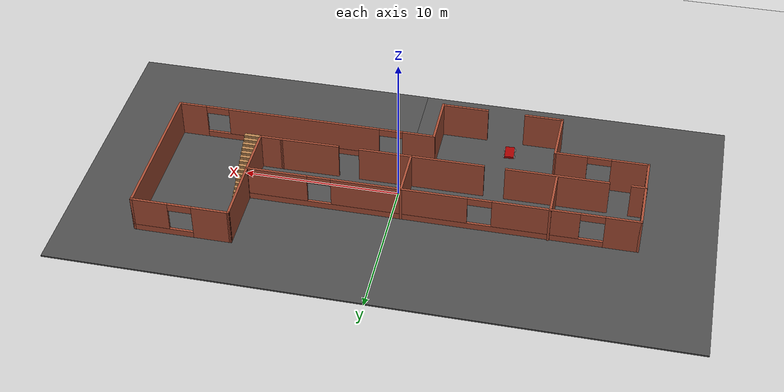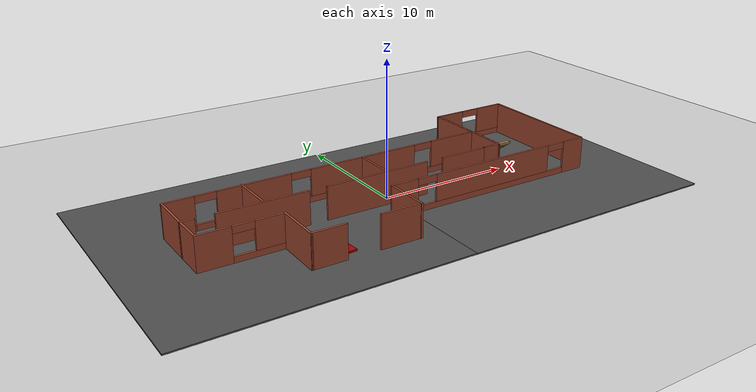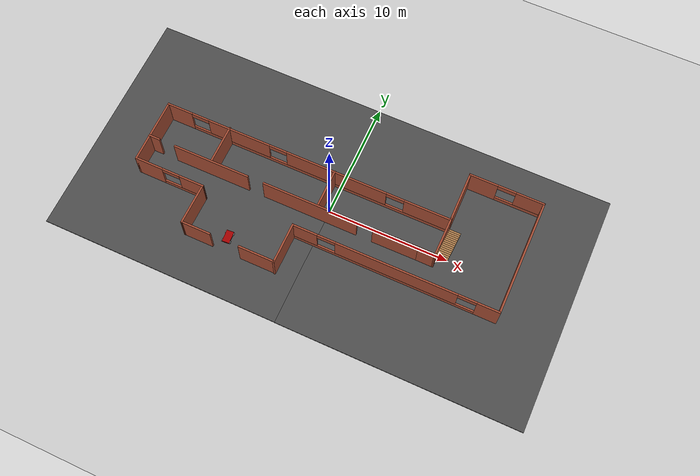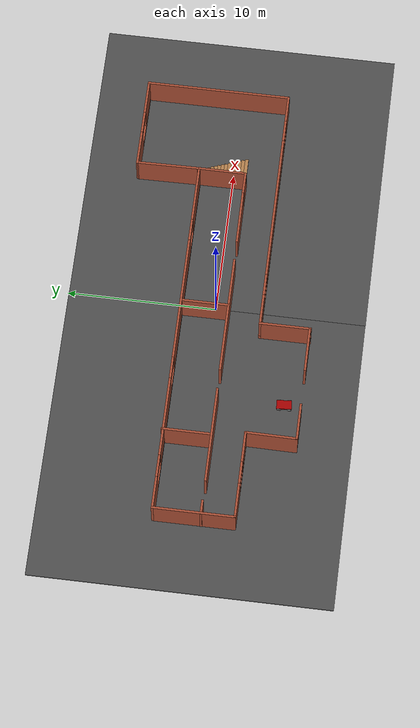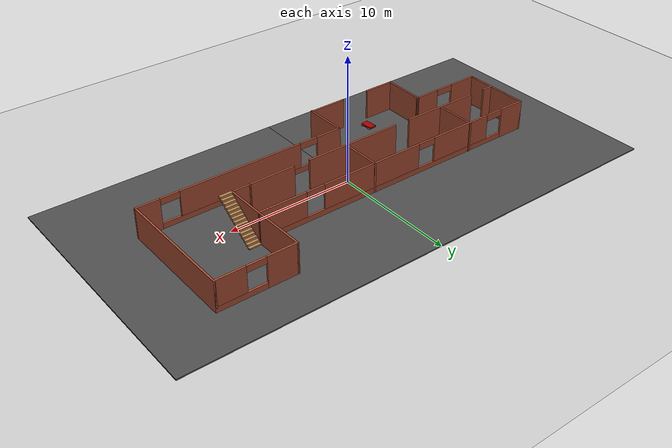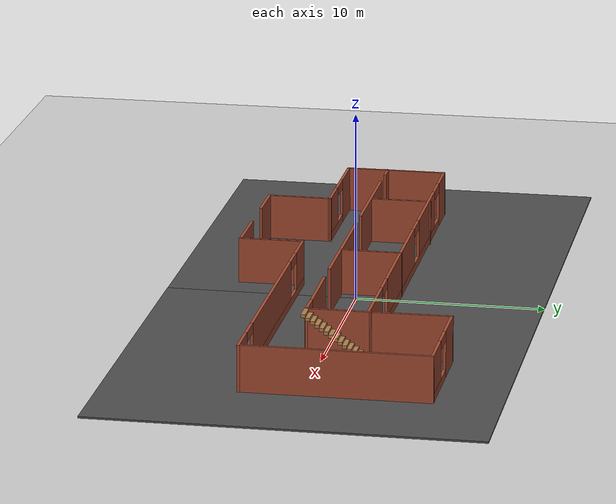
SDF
<sdf version="1.7">
 <world name="default">
  <light name="sun" type="directional">
   <pose>0 0 10 0 -0 0</pose>
   <diffuse>0.8 0.8 0.8 1</diffuse>
   <specular>0.2 0.2 0.2 1</specular>
   <attenuation>
    <range>1000</range>
    <constant>0.9</constant>
    <linear>0.01</linear>
    <quadratic>0.001</quadratic>
   </attenuation>
   <direction>-0.5 0.1 -0.9</direction>
   <spot><inner_angle>0</inner_angle><outer_angle>0</outer_angle><falloff>0</falloff></spot>
  </light>
  <model name="ground_plane">
   <static>1</static>
   <link name="link">
    <collision name="collision">
     <geometry><plane><normal>0 0 1</normal><size>100 100</size></plane></geometry>
     <surface><friction><ode><mu>100</mu><mu2>50</mu2></ode></friction></surface>
    </collision>
    <visual name="visual">
     <cast_shadows>0</cast_shadows>
     <geometry><plane><normal>0 0 1</normal><size>100 100</size></plane></geometry>
     <material>
      <script><uri>file://media/materials/scripts/gazebo.material</uri><name>Gazebo/Grey</name></script>
     </material>
    </visual>
   </link>
  </model>
  <gravity>0 0 -9.8</gravity>
  <magnetic_field>6e-06 2.3e-05 -4.2e-05</magnetic_field>
  <atmosphere type="adiabatic"/>
  <physics type="ode">
   <max_step_size>0.001</max_step_size>
   <real_time_factor>1</real_time_factor>
   <real_time_update_rate>1000</real_time_update_rate>
  </physics>
  <scene><ambient>0.4 0.4 0.4 1</ambient><background>0.7 0.7 0.7 1</background><shadows>1</shadows></scene>
  <spherical_coordinates>
   <surface_model>EARTH_WGS84</surface_model>
   <latitude_deg>0</latitude_deg>
   <longitude_deg>0</longitude_deg>
   <elevation>0</elevation>
   <heading_deg>0</heading_deg>
  </spherical_coordinates>
  <model name="hospital">
   <pose>-0.045457 -0.009222 -0.021008 0 -0 0</pose>
   <frame name="Stairs::__model__" attached_to="Stairs::Stairs_0">
    <pose relative_to="__model__">0 0 0 0 -0 0</pose>
   </frame>
   <link name="Stairs::Stairs_0">
    <visual name="Stairs_0_Visual_0">
     <pose>9.72126 2.40649 0.083333 0 -0 0</pose>
     <geometry><box><size>1 0.233333 0.166667</size></box></geometry>
     <material>
      <script><uri>file://media/materials/scripts/gazebo.material</uri><name>Gazebo/Wood</name></script>
      <ambient>1 1 1 1</ambient>
     </material>
     <meta><layer>0</layer></meta>
    </visual>
    <collision name="Stairs_0_Collision_0">
     <geometry><box><size>1 0.233333 0.166667</size></box></geometry>
     <pose>9.72126 2.40649 0.083333 0 -0 0</pose>
    </collision>
    <visual name="Stairs_0_Visual_1">
     <pose>9.72126 2.17315 0.25 0 -0 0</pose>
     <geometry><box><size>1 0.233333 0.166667</size></box></geometry>
     <material>
      <script><uri>file://media/materials/scripts/gazebo.material</uri><name>Gazebo/Wood</name></script>
      <ambient>1 1 1 1</ambient>
     </material>
     <meta><layer>0</layer></meta>
    </visual>
    <collision name="Stairs_0_Collision_1">
     <geometry><box><size>1 0.233333 0.166667</size></box></geometry>
     <pose>9.72126 2.17315 0.25 0 -0 0</pose>
    </collision>
    <visual name="Stairs_0_Visual_2">
     <pose>9.72126 1.93982 0.416667 0 -0 0</pose>
     <geometry><box><size>1 0.233333 0.166667</size></box></geometry>
     <material>
      <script><uri>file://media/materials/scripts/gazebo.material</uri><name>Gazebo/Wood</name></script>
      <ambient>1 1 1 1</ambient>
     </material>
     <meta><layer>0</layer></meta>
    </visual>
    <collision name="Stairs_0_Collision_2">
     <geometry><box><size>1 0.233333 0.166667</size></box></geometry>
     <pose>9.72126 1.93982 0.416667 0 -0 0</pose>
    </collision>
    <visual name="Stairs_0_Visual_3">
     <pose>9.72126 1.70649 0.583333 0 -0 0</pose>
     <geometry><box><size>1 0.233333 0.166667</size></box></geometry>
     <material>
      <script><uri>file://media/materials/scripts/gazebo.material</uri><name>Gazebo/Wood</name></script>
      <ambient>1 1 1 1</ambient>
     </material>
     <meta><layer>0</layer></meta>
    </visual>
    <collision name="Stairs_0_Collision_3">
     <geometry><box><size>1 0.233333 0.166667</size></box></geometry>
     <pose>9.72126 1.70649 0.583333 0 -0 0</pose>
    </collision>
    <visual name="Stairs_0_Visual_4">
     <pose>9.72126 1.47315 0.75 0 -0 0</pose>
     <geometry><box><size>1 0.233333 0.166667</size></box></geometry>
     <material>
      <script><uri>file://media/materials/scripts/gazebo.material</uri><name>Gazebo/Wood</name></script>
      <ambient>1 1 1 1</ambient>
     </material>
     <meta><layer>0</layer></meta>
    </visual>
    <collision name="Stairs_0_Collision_4">
     <geometry><box><size>1 0.233333 0.166667</size></box></geometry>
     <pose>9.72126 1.47315 0.75 0 -0 0</pose>
    </collision>
    <visual name="Stairs_0_Visual_5">
     <pose>9.72126 1.23982 0.916667 0 -0 0</pose>
     <geometry><box><size>1 0.233333 0.166667</size></box></geometry>
     <material>
      <script><uri>file://media/materials/scripts/gazebo.material</uri><name>Gazebo/Wood</name></script>
      <ambient>1 1 1 1</ambient>
     </material>
     <meta><layer>0</layer></meta>
    </visual>
    <collision name="Stairs_0_Collision_5">
     <geometry><box><size>1 0.233333 0.166667</size></box></geometry>
     <pose>9.72126 1.23982 0.916667 0 -0 0</pose>
    </collision>
    <visual name="Stairs_0_Visual_6">
     <pose>9.72126 1.00649 1.08333 0 -0 0</pose>
     <geometry><box><size>1 0.233333 0.166667</size></box></geometry>
     <material>
      <script><uri>file://media/materials/scripts/gazebo.material</uri><name>Gazebo/Wood</name></script>
      <ambient>1 1 1 1</ambient>
     </material>
     <meta><layer>0</layer></meta>
    </visual>
    <collision name="Stairs_0_Collision_6">
     <geometry><box><size>1 0.233333 0.166667</size></box></geometry>
     <pose>9.72126 1.00649 1.08333 0 -0 0</pose>
    </collision>
    <visual name="Stairs_0_Visual_7">
     <pose>9.72126 0.773153 1.25 0 -0 0</pose>
     <geometry><box><size>1 0.233333 0.166667</size></box></geometry>
     <material>
      <script><uri>file://media/materials/scripts/gazebo.material</uri><name>Gazebo/Wood</name></script>
      <ambient>1 1 1 1</ambient>
     </material>
     <meta><layer>0</layer></meta>
    </visual>
    <collision name="Stairs_0_Collision_7">
     <geometry><box><size>1 0.233333 0.166667</size></box></geometry>
     <pose>9.72126 0.773153 1.25 0 -0 0</pose>
    </collision>
    <visual name="Stairs_0_Visual_8">
     <pose>9.72126 0.539819 1.41667 0 -0 0</pose>
     <geometry><box><size>1 0.233333 0.166667</size></box></geometry>
     <material>
      <script><uri>file://media/materials/scripts/gazebo.material</uri><name>Gazebo/Wood</name></script>
      <ambient>1 1 1 1</ambient>
     </material>
     <meta><layer>0</layer></meta>
    </visual>
    <collision name="Stairs_0_Collision_8">
     <geometry><box><size>1 0.233333 0.166667</size></box></geometry>
     <pose>9.72126 0.539819 1.41667 0 -0 0</pose>
    </collision>
    <visual name="Stairs_0_Visual_9">
     <pose>9.72126 0.306486 1.58333 0 -0 0</pose>
     <geometry><box><size>1 0.233333 0.166667</size></box></geometry>
     <material>
      <script><uri>file://media/materials/scripts/gazebo.material</uri><name>Gazebo/Wood</name></script>
      <ambient>1 1 1 1</ambient>
     </material>
     <meta><layer>0</layer></meta>
    </visual>
    <collision name="Stairs_0_Collision_9">
     <geometry><box><size>1 0.233333 0.166667</size></box></geometry>
     <pose>9.72126 0.306486 1.58333 0 -0 0</pose>
    </collision>
    <visual name="Stairs_0_Visual_10">
     <pose>9.72126 0.073153 1.75 0 -0 0</pose>
     <geometry><box><size>1 0.233333 0.166667</size></box></geometry>
     <material>
      <script><uri>file://media/materials/scripts/gazebo.material</uri><name>Gazebo/Wood</name></script>
      <ambient>1 1 1 1</ambient>
     </material>
     <meta><layer>0</layer></meta>
    </visual>
    <collision name="Stairs_0_Collision_10">
     <geometry><box><size>1 0.233333 0.166667</size></box></geometry>
     <pose>9.72126 0.073153 1.75 0 -0 0</pose>
    </collision>
    <visual name="Stairs_0_Visual_11">
     <pose>9.72126 -0.160181 1.91667 0 -0 0</pose>
     <geometry><box><size>1 0.233333 0.166667</size></box></geometry>
     <material>
      <script><uri>file://media/materials/scripts/gazebo.material</uri><name>Gazebo/Wood</name></script>
      <ambient>1 1 1 1</ambient>
     </material>
     <meta><layer>0</layer></meta>
    </visual>
    <collision name="Stairs_0_Collision_11">
     <geometry><box><size>1 0.233333 0.166667</size></box></geometry>
     <pose>9.72126 -0.160181 1.91667 0 -0 0</pose>
    </collision>
    <visual name="Stairs_0_Visual_12">
     <pose>9.72126 -0.393514 2.08333 0 -0 0</pose>
     <geometry><box><size>1 0.233333 0.166667</size></box></geometry>
     <material>
      <script><uri>file://media/materials/scripts/gazebo.material</uri><name>Gazebo/Wood</name></script>
      <ambient>1 1 1 1</ambient>
     </material>
     <meta><layer>0</layer></meta>
    </visual>
    <collision name="Stairs_0_Collision_12">
     <geometry><box><size>1 0.233333 0.166667</size></box></geometry>
     <pose>9.72126 -0.393514 2.08333 0 -0 0</pose>
    </collision>
    <visual name="Stairs_0_Visual_13">
     <pose>9.72126 -0.626847 2.25 0 -0 0</pose>
     <geometry><box><size>1 0.233333 0.166667</size></box></geometry>
     <material>
      <script><uri>file://media/materials/scripts/gazebo.material</uri><name>Gazebo/Wood</name></script>
      <ambient>1 1 1 1</ambient>
     </material>
     <meta><layer>0</layer></meta>
    </visual>
    <collision name="Stairs_0_Collision_13">
     <geometry><box><size>1 0.233333 0.166667</size></box></geometry>
     <pose>9.72126 -0.626847 2.25 0 -0 0</pose>
    </collision>
    <visual name="Stairs_0_Visual_14">
     <pose>9.72126 -0.860181 2.41667 0 -0 0</pose>
     <geometry><box><size>1 0.233333 0.166667</size></box></geometry>
     <material>
      <script><uri>file://media/materials/scripts/gazebo.material</uri><name>Gazebo/Wood</name></script>
      <ambient>1 1 1 1</ambient>
     </material>
     <meta><layer>0</layer></meta>
    </visual>
    <collision name="Stairs_0_Collision_14">
     <geometry><box><size>1 0.233333 0.166667</size></box></geometry>
     <pose>9.72126 -0.860181 2.41667 0 -0 0</pose>
    </collision>
    <pose relative_to="Stairs::__model__">0 0 0 0 -0 0</pose>
   </link>
   <link name="Wall_36">
    <pose>-3.04399 2.26756 0 0 -0 0</pose>
    <visual name="Wall_36_Visual_0">
     <pose>-11.1466 0 1.25 0 -0 0</pose>
     <geometry><box><size>2.20684 0.15 2.5</size></box></geometry>
     <material>
      <script><uri>file://media/materials/scripts/gazebo.material</uri><name>Gazebo/Bricks</name></script>
      <ambient>1 1 1 1</ambient>
     </material>
     <meta><layer>0</layer></meta>
    </visual>
    <collision name="Wall_36_Collision_0">
     <geometry><box><size>2.20684 0.15 2.5</size></box></geometry>
     <pose>-11.1466 0 1.25 0 -0 0</pose>
    </collision>
    <visual name="Wall_36_Visual_1">
     <pose>1.10342 0 0.25 0 -0 0</pose>
     <geometry><box><size>22.2932 0.15 0.5</size></box></geometry>
     <material>
      <script><uri>file://media/materials/scripts/gazebo.material</uri><name>Gazebo/Bricks</name></script>
      <ambient>1 1 1 1</ambient>
     </material>
     <meta><layer>0</layer></meta>
    </visual>
    <collision name="Wall_36_Collision_1">
     <geometry><box><size>22.2932 0.15 0.5</size></box></geometry>
     <pose>1.10342 0 0.25 0 -0 0</pose>
    </collision>
    <visual name="Wall_36_Visual_2">
     <pose>-5.85003 0 1.5 0 -0 0</pose>
     <geometry><box><size>5.38627 0.15 2</size></box></geometry>
     <material>
      <script><uri>file://media/materials/scripts/gazebo.material</uri><name>Gazebo/Bricks</name></script>
      <ambient>1 1 1 1</ambient>
     </material>
     <meta><layer>0</layer></meta>
    </visual>
    <collision name="Wall_36_Collision_2">
     <geometry><box><size>5.38627 0.15 2</size></box></geometry>
     <pose>-5.85003 0 1.5 0 -0 0</pose>
    </collision>
    <visual name="Wall_36_Visual_3">
     <pose>2.61743 0 1.5 0 -0 0</pose>
     <geometry><box><size>8.54864 0.15 2</size></box></geometry>
     <material>
      <script><uri>file://media/materials/scripts/gazebo.material</uri><name>Gazebo/Bricks</name></script>
      <ambient>1 1 1 1</ambient>
     </material>
     <meta><layer>0</layer></meta>
    </visual>
    <collision name="Wall_36_Collision_3">
     <geometry><box><size>8.54864 0.15 2</size></box></geometry>
     <pose>2.61743 0 1.5 0 -0 0</pose>
    </collision>
    <visual name="Wall_36_Visual_4">
     <pose>10.3209 0 1.5 0 -0 0</pose>
     <geometry><box><size>3.85826 0.15 2</size></box></geometry>
     <material>
      <script><uri>file://media/materials/scripts/gazebo.material</uri><name>Gazebo/Bricks</name></script>
      <ambient>1 1 1 1</ambient>
     </material>
     <meta><layer>0</layer></meta>
    </visual>
    <collision name="Wall_36_Collision_4">
     <geometry><box><size>3.85826 0.15 2</size></box></geometry>
     <pose>10.3209 0 1.5 0 -0 0</pose>
    </collision>
    <visual name="Wall_36_Visual_5">
     <pose>-9.29316 0 2.25 0 -0 0</pose>
     <geometry><box><size>1.5 0.15 0.5</size></box></geometry>
     <material>
      <script><uri>file://media/materials/scripts/gazebo.material</uri><name>Gazebo/Bricks</name></script>
      <ambient>1 1 1 1</ambient>
     </material>
     <meta><layer>0</layer></meta>
    </visual>
    <collision name="Wall_36_Collision_5">
     <geometry><box><size>1.5 0.15 0.5</size></box></geometry>
     <pose>-9.29316 0 2.25 0 -0 0</pose>
    </collision>
    <visual name="Wall_36_Visual_6">
     <pose>-2.40689 0 2.25 0 -0 0</pose>
     <geometry><box><size>1.5 0.15 0.5</size></box></geometry>
     <material>
      <script><uri>file://media/materials/scripts/gazebo.material</uri><name>Gazebo/Bricks</name></script>
      <ambient>1 1 1 1</ambient>
     </material>
     <meta><layer>0</layer></meta>
    </visual>
    <collision name="Wall_36_Collision_6">
     <geometry><box><size>1.5 0.15 0.5</size></box></geometry>
     <pose>-2.40689 0 2.25 0 -0 0</pose>
    </collision>
    <visual name="Wall_36_Visual_7">
     <pose>7.64175 0 2.25 0 -0 0</pose>
     <geometry><box><size>1.5 0.15 0.5</size></box></geometry>
     <material>
      <script><uri>file://media/materials/scripts/gazebo.material</uri><name>Gazebo/Bricks</name></script>
      <ambient>1 1 1 1</ambient>
     </material>
     <meta><layer>0</layer></meta>
    </visual>
    <collision name="Wall_36_Collision_7">
     <geometry><box><size>1.5 0.15 0.5</size></box></geometry>
     <pose>7.64175 0 2.25 0 -0 0</pose>
    </collision>
   </link>
   <link name="Wall_38">
    <pose>12.1937 6.47456 0 0 -0 0</pose>
    <visual name="Wall_38_Visual_0">
     <pose>-1.9229 0 1.25 0 -0 0</pose>
     <geometry><box><size>2.4042 0.15 2.5</size></box></geometry>
     <material>
      <script><uri>file://media/materials/scripts/gazebo.material</uri><name>Gazebo/Bricks</name></script>
      <ambient>1 1 1 1</ambient>
     </material>
     <meta><layer>0</layer></meta>
    </visual>
    <collision name="Wall_38_Collision_0">
     <geometry><box><size>2.4042 0.15 2.5</size></box></geometry>
     <pose>-1.9229 0 1.25 0 -0 0</pose>
    </collision>
    <visual name="Wall_38_Visual_1">
     <pose>1.2021 0 0.25 0 -0 0</pose>
     <geometry><box><size>3.8458 0.15 0.5</size></box></geometry>
     <material>
      <script><uri>file://media/materials/scripts/gazebo.material</uri><name>Gazebo/Bricks</name></script>
      <ambient>1 1 1 1</ambient>
     </material>
     <meta><layer>0</layer></meta>
    </visual>
    <collision name="Wall_38_Collision_1">
     <geometry><box><size>3.8458 0.15 0.5</size></box></geometry>
     <pose>1.2021 0 0.25 0 -0 0</pose>
    </collision>
    <visual name="Wall_38_Visual_2">
     <pose>1.9521 0 1.5 0 -0 0</pose>
     <geometry><box><size>2.3458 0.15 2</size></box></geometry>
     <material>
      <script><uri>file://media/materials/scripts/gazebo.material</uri><name>Gazebo/Bricks</name></script>
      <ambient>1 1 1 1</ambient>
     </material>
     <meta><layer>0</layer></meta>
    </visual>
    <collision name="Wall_38_Collision_2">
     <geometry><box><size>2.3458 0.15 2</size></box></geometry>
     <pose>1.9521 0 1.5 0 -0 0</pose>
    </collision>
    <visual name="Wall_38_Visual_3">
     <pose>0.029203 0 2.25 0 -0 0</pose>
     <geometry><box><size>1.5 0.15 0.5</size></box></geometry>
     <material>
      <script><uri>file://media/materials/scripts/gazebo.material</uri><name>Gazebo/Bricks</name></script>
      <ambient>1 1 1 1</ambient>
     </material>
     <meta><layer>0</layer></meta>
    </visual>
    <collision name="Wall_38_Collision_3">
     <geometry><box><size>1.5 0.15 0.5</size></box></geometry>
     <pose>0.029203 0 2.25 0 -0 0</pose>
    </collision>
   </link>
   <link name="Wall_39">
    <collision name="Wall_39_Collision">
     <geometry><box><size>9.75 0.15 2.5</size></box></geometry>
     <pose>0 0 1.25 0 -0 0</pose>
    </collision>
    <visual name="Wall_39_Visual">
     <pose>0 0 1.25 0 -0 0</pose>
     <geometry><box><size>9.75 0.15 2.5</size></box></geometry>
     <material>
      <script><uri>file://media/materials/scripts/gazebo.material</uri><name>Gazebo/Bricks</name></script>
      <ambient>1 1 1 1</ambient>
     </material>
     <meta><layer>0</layer></meta>
    </visual>
    <pose>15.2437 1.67456 0 0 -0 -1.5708</pose>
   </link>
   <link name="Wall_40">
    <pose>6.81869 -3.12544 0 0 -0 3.14159</pose>
    <visual name="Wall_40_Visual_0">
     <pose>-7.56354 0 1.25 0 -0 0</pose>
     <geometry><box><size>1.87292 0.15 2.5</size></box></geometry>
     <material>
      <script><uri>file://media/materials/scripts/gazebo.material</uri><name>Gazebo/Bricks</name></script>
      <ambient>1 1 1 1</ambient>
     </material>
     <meta><layer>0</layer></meta>
    </visual>
    <collision name="Wall_40_Collision_0">
     <geometry><box><size>1.87292 0.15 2.5</size></box></geometry>
     <pose>-7.56354 0 1.25 0 -0 0</pose>
    </collision>
    <visual name="Wall_40_Visual_1">
     <pose>0.93646 0 0.25 0 -0 0</pose>
     <geometry><box><size>15.1271 0.15 0.5</size></box></geometry>
     <material>
      <script><uri>file://media/materials/scripts/gazebo.material</uri><name>Gazebo/Bricks</name></script>
      <ambient>1 1 1 1</ambient>
     </material>
     <meta><layer>0</layer></meta>
    </visual>
    <collision name="Wall_40_Collision_1">
     <geometry><box><size>15.1271 0.15 0.5</size></box></geometry>
     <pose>0.93646 0 0.25 0 -0 0</pose>
    </collision>
    <visual name="Wall_40_Visual_2">
     <pose>-0.12867 0 1.5 0 -0 0</pose>
     <geometry><box><size>9.99682 0.15 2</size></box></geometry>
     <material>
      <script><uri>file://media/materials/scripts/gazebo.material</uri><name>Gazebo/Bricks</name></script>
      <ambient>1 1 1 1</ambient>
     </material>
     <meta><layer>0</layer></meta>
    </visual>
    <collision name="Wall_40_Collision_2">
     <geometry><box><size>9.99682 0.15 2</size></box></geometry>
     <pose>-0.12867 0 1.5 0 -0 0</pose>
    </collision>
    <visual name="Wall_40_Visual_3">
     <pose>7.43487 0 1.5 0 -0 0</pose>
     <geometry><box><size>2.13026 0.15 2</size></box></geometry>
     <material>
      <script><uri>file://media/materials/scripts/gazebo.material</uri><name>Gazebo/Bricks</name></script>
      <ambient>1 1 1 1</ambient>
     </material>
     <meta><layer>0</layer></meta>
    </visual>
    <collision name="Wall_40_Collision_3">
     <geometry><box><size>2.13026 0.15 2</size></box></geometry>
     <pose>7.43487 0 1.5 0 -0 0</pose>
    </collision>
    <visual name="Wall_40_Visual_4">
     <pose>-5.87708 0 2.25 0 -0 0</pose>
     <geometry><box><size>1.5 0.15 0.5</size></box></geometry>
     <material>
      <script><uri>file://media/materials/scripts/gazebo.material</uri><name>Gazebo/Bricks</name></script>
      <ambient>1 1 1 1</ambient>
     </material>
     <meta><layer>0</layer></meta>
    </visual>
    <collision name="Wall_40_Collision_4">
     <geometry><box><size>1.5 0.15 0.5</size></box></geometry>
     <pose>-5.87708 0 2.25 0 -0 0</pose>
    </collision>
    <visual name="Wall_40_Visual_5">
     <pose>5.61974 0 2.25 0 -0 0</pose>
     <geometry><box><size>1.5 0.15 0.5</size></box></geometry>
     <material>
      <script><uri>file://media/materials/scripts/gazebo.material</uri><name>Gazebo/Bricks</name></script>
      <ambient>1 1 1 1</ambient>
     </material>
     <meta><layer>0</layer></meta>
    </visual>
    <collision name="Wall_40_Collision_5">
     <geometry><box><size>1.5 0.15 0.5</size></box></geometry>
     <pose>5.61974 0 2.25 0 -0 0</pose>
    </collision>
   </link>
   <link name="Wall_42">
    <collision name="Wall_42_Collision">
     <geometry><box><size>4.23928 0.15 2.5</size></box></geometry>
     <pose>0 0 1.25 0 -0 0</pose>
    </collision>
    <visual name="Wall_42_Visual">
     <pose>0 0 1.25 0 -0 0</pose>
     <geometry><box><size>4.23928 0.15 2.5</size></box></geometry>
     <material>
      <script><uri>file://media/materials/scripts/gazebo.material</uri><name>Gazebo/Bricks</name></script>
      <ambient>1 1 1 1</ambient>
     </material>
     <meta><layer>0</layer></meta>
    </visual>
    <pose>9.16806 4.43006 0 0 -0 -1.55888</pose>
   </link>
   <link name="Wall_44">
    <collision name="Wall_44_Collision">
     <geometry><box><size>5.5 0.15 2.5</size></box></geometry>
     <pose>0 0 1.25 0 -0 0</pose>
    </collision>
    <visual name="Wall_44_Visual">
     <pose>0 0 1.25 0 -0 0</pose>
     <geometry><box><size>5.5 0.15 2.5</size></box></geometry>
     <material>
      <script><uri>file://media/materials/scripts/gazebo.material</uri><name>Gazebo/Bricks</name></script>
      <ambient>1 1 1 1</ambient>
     </material>
     <meta><layer>0</layer></meta>
    </visual>
    <pose>-15.219 -0.407439 0 0 -0 -1.5708</pose>
   </link>
   <link name="Wall_45">
    <pose>-12.294 -3.08244 0 0 -0 0</pose>
    <visual name="Wall_45_Visual_0">
     <pose>-1.80792 0 1.25 0 -0 0</pose>
     <geometry><box><size>2.38417 0.15 2.5</size></box></geometry>
     <material>
      <script><uri>file://media/materials/scripts/gazebo.material</uri><name>Gazebo/Bricks</name></script>
      <ambient>1 1 1 1</ambient>
     </material>
     <meta><layer>0</layer></meta>
    </visual>
    <collision name="Wall_45_Collision_0">
     <geometry><box><size>2.38417 0.15 2.5</size></box></geometry>
     <pose>-1.80792 0 1.25 0 -0 0</pose>
    </collision>
    <visual name="Wall_45_Visual_1">
     <pose>1.19208 0 0.25 0 -0 0</pose>
     <geometry><box><size>3.61583 0.15 0.5</size></box></geometry>
     <material>
      <script><uri>file://media/materials/scripts/gazebo.material</uri><name>Gazebo/Bricks</name></script>
      <ambient>1 1 1 1</ambient>
     </material>
     <meta><layer>0</layer></meta>
    </visual>
    <collision name="Wall_45_Collision_1">
     <geometry><box><size>3.61583 0.15 0.5</size></box></geometry>
     <pose>1.19208 0 0.25 0 -0 0</pose>
    </collision>
    <visual name="Wall_45_Visual_2">
     <pose>1.94208 0 1.5 0 -0 0</pose>
     <geometry><box><size>2.11583 0.15 2</size></box></geometry>
     <material>
      <script><uri>file://media/materials/scripts/gazebo.material</uri><name>Gazebo/Bricks</name></script>
      <ambient>1 1 1 1</ambient>
     </material>
     <meta><layer>0</layer></meta>
    </visual>
    <collision name="Wall_45_Collision_2">
     <geometry><box><size>2.11583 0.15 2</size></box></geometry>
     <pose>1.94208 0 1.5 0 -0 0</pose>
    </collision>
    <visual name="Wall_45_Visual_3">
     <pose>0.134167 0 2.25 0 -0 0</pose>
     <geometry><box><size>1.5 0.15 0.5</size></box></geometry>
     <material>
      <script><uri>file://media/materials/scripts/gazebo.material</uri><name>Gazebo/Bricks</name></script>
      <ambient>1 1 1 1</ambient>
     </material>
     <meta><layer>0</layer></meta>
    </visual>
    <collision name="Wall_45_Collision_3">
     <geometry><box><size>1.5 0.15 0.5</size></box></geometry>
     <pose>0.134167 0 2.25 0 -0 0</pose>
    </collision>
   </link>
   <link name="Wall_46">
    <collision name="Wall_46_Collision">
     <geometry><box><size>3.5 0.15 2.5</size></box></geometry>
     <pose>0 0 1.25 0 -0 0</pose>
    </collision>
    <visual name="Wall_46_Visual">
     <pose>0 0 1.25 0 -0 0</pose>
     <geometry><box><size>3.5 0.15 2.5</size></box></geometry>
     <material>
      <script><uri>file://media/materials/scripts/gazebo.material</uri><name>Gazebo/Bricks</name></script>
      <ambient>1 1 1 1</ambient>
     </material>
     <meta><layer>0</layer></meta>
    </visual>
    <pose>-9.38918 -4.75744 0 0 -0 -1.58285</pose>
   </link>
   <link name="Wall_47">
    <collision name="Wall_47_Collision">
     <geometry><box><size>2.5 0.15 2.5</size></box></geometry>
     <pose>0 0 1.25 0 -0 0</pose>
    </collision>
    <visual name="Wall_47_Visual">
     <pose>0 0 1.25 0 -0 0</pose>
     <geometry><box><size>2.5 0.15 2.5</size></box></geometry>
     <material>
      <script><uri>file://media/materials/scripts/gazebo.material</uri><name>Gazebo/Bricks</name></script>
      <ambient>1 1 1 1</ambient>
     </material>
     <meta><layer>0</layer></meta>
    </visual>
    <pose>-8.21418 -6.43244 0 0 -0 0</pose>
   </link>
   <link name="Wall_49">
    <collision name="Wall_49_Collision">
     <geometry><box><size>3.5 0.15 2.5</size></box></geometry>
     <pose>0 0 1.25 0 -0 0</pose>
    </collision>
    <visual name="Wall_49_Visual">
     <pose>0 0 1.25 0 -0 0</pose>
     <geometry><box><size>3.5 0.15 2.5</size></box></geometry>
     <material>
      <script><uri>file://media/materials/scripts/gazebo.material</uri><name>Gazebo/Bricks</name></script>
      <ambient>1 1 1 1</ambient>
     </material>
     <meta><layer>0</layer></meta>
    </visual>
    <pose>-1.60631 -4.80044 0 0 -0 -1.5708</pose>
   </link>
   <link name="Wall_52">
    <collision name="Wall_52_Collision">
     <geometry><box><size>1 0.15 2.5</size></box></geometry>
     <pose>0 0 1.25 0 -0 0</pose>
    </collision>
    <visual name="Wall_52_Visual">
     <pose>0 0 1.25 0 -0 0</pose>
     <geometry><box><size>1 0.15 2.5</size></box></geometry>
     <material>
      <script><uri>file://media/materials/scripts/gazebo.material</uri><name>Gazebo/Bricks</name></script>
      <ambient>1 1 1 1</ambient>
     </material>
     <meta><layer>0</layer></meta>
    </visual>
    <pose>-14.8187 -0.886547 0 0 -0 0</pose>
   </link>
   <link name="Wall_54">
    <collision name="Wall_54_Collision">
     <geometry><box><size>6.5 0.15 2.5</size></box></geometry>
     <pose>0 0 1.25 0 -0 0</pose>
    </collision>
    <visual name="Wall_54_Visual">
     <pose>0 0 1.25 0 -0 0</pose>
     <geometry><box><size>6.5 0.15 2.5</size></box></geometry>
     <material>
      <script><uri>file://media/materials/scripts/gazebo.material</uri><name>Gazebo/Bricks</name></script>
      <ambient>1 1 1 1</ambient>
     </material>
     <meta><layer>0</layer></meta>
    </visual>
    <pose>-9.77166 -0.901327 0 0 -0 0</pose>
   </link>
   <link name="Wall_56">
    <collision name="Wall_56_Collision">
     <geometry><box><size>8 0.15 2.5</size></box></geometry>
     <pose>0 0 1.25 0 -0 0</pose>
    </collision>
    <visual name="Wall_56_Visual">
     <pose>0 0 1.25 0 -0 0</pose>
     <geometry><box><size>8 0.15 2.5</size></box></geometry>
     <material>
      <script><uri>file://media/materials/scripts/gazebo.material</uri><name>Gazebo/Bricks</name></script>
      <ambient>1 1 1 1</ambient>
     </material>
     <meta><layer>0</layer></meta>
    </visual>
    <pose>-1.22612 -0.90196 0 0 -0 0</pose>
   </link>
   <link name="Wall_60">
    <collision name="Wall_60_Collision">
     <geometry><box><size>3.80144 0.15 2.5</size></box></geometry>
     <pose>0 0 1.25 0 -0 0</pose>
    </collision>
    <visual name="Wall_60_Visual">
     <pose>0 0 1.25 0 -0 0</pose>
     <geometry><box><size>3.80144 0.15 2.5</size></box></geometry>
     <material>
      <script><uri>file://media/materials/scripts/gazebo.material</uri><name>Gazebo/Bricks</name></script>
      <ambient>1 1 1 1</ambient>
     </material>
     <meta><layer>0</layer></meta>
    </visual>
    <pose>5.98173 -0.889536 0 0 -0 -3.13492</pose>
   </link>
   <link name="Wall_62">
    <collision name="Wall_62_Collision">
     <geometry><box><size>3.25 0.15 2.5</size></box></geometry>
     <pose>0 0 1.25 0 -0 0</pose>
    </collision>
    <visual name="Wall_62_Visual">
     <pose>0 0 1.25 0 -0 0</pose>
     <geometry><box><size>3.25 0.15 2.5</size></box></geometry>
     <material>
      <script><uri>file://media/materials/scripts/gazebo.material</uri><name>Gazebo/Bricks</name></script>
      <ambient>1 1 1 1</ambient>
     </material>
     <meta><layer>0</layer></meta>
    </visual>
    <pose>-0.560477 0.732299 0 0 -0 -1.5708</pose>
   </link>
   <link name="Wall_64">
    <collision name="Wall_64_Collision">
     <geometry><box><size>3.25 0.15 2.5</size></box></geometry>
     <pose>0 0 1.25 0 -0 0</pose>
    </collision>
    <visual name="Wall_64_Visual">
     <pose>0 0 1.25 0 -0 0</pose>
     <geometry><box><size>3.25 0.15 2.5</size></box></geometry>
     <material>
      <script><uri>file://media/materials/scripts/gazebo.material</uri><name>Gazebo/Bricks</name></script>
      <ambient>1 1 1 1</ambient>
     </material>
     <meta><layer>0</layer></meta>
    </visual>
    <pose>-9.75518 0.78357 0 0 -0 -1.5708</pose>
   </link>
   <link name="Wall_66">
    <collision name="Wall_66_Collision">
     <geometry><box><size>3.42 0.15 2.5</size></box></geometry>
     <pose>0 0 1.25 0 -0 0</pose>
    </collision>
    <visual name="Wall_66_Visual">
     <pose>0 0 1.25 0 -0 0</pose>
     <geometry><box><size>3.42 0.15 2.5</size></box></geometry>
     <material>
      <script><uri>file://media/materials/scripts/gazebo.material</uri><name>Gazebo/Bricks</name></script>
      <ambient>1 1 1 1</ambient>
     </material>
     <meta><layer>0</layer></meta>
    </visual>
    <pose>9.19242 0.750564 0 0 -0 -1.5708</pose>
   </link>
   <link name="Wall_67">
    <collision name="Wall_67_Collision">
     <geometry><box><size>1.5355 0.15 2.5</size></box></geometry>
     <pose>0 0 1.25 0 -0 0</pose>
    </collision>
    <visual name="Wall_67_Visual">
     <pose>0 0 1.25 0 -0 0</pose>
     <geometry><box><size>1.5355 0.15 2.5</size></box></geometry>
     <material>
      <script><uri>file://media/materials/scripts/gazebo.material</uri><name>Gazebo/Bricks</name></script>
      <ambient>1 1 1 1</ambient>
     </material>
     <meta><layer>0</layer></meta>
    </visual>
    <pose>8.49991 -0.880896 0 0 -0 3.13648</pose>
   </link>
   <link name="Wall_69">
    <collision name="Wall_69_Collision">
     <geometry><box><size>3 0.15 2.5</size></box></geometry>
     <pose>0 0 1.25 0 -0 0</pose>
    </collision>
    <visual name="Wall_69_Visual">
     <pose>0 0 1.25 0 -0 0</pose>
     <geometry><box><size>3 0.15 2.5</size></box></geometry>
     <material>
      <script><uri>file://media/materials/scripts/gazebo.material</uri><name>Gazebo/Bricks</name></script>
      <ambient>1 1 1 1</ambient>
     </material>
     <meta><layer>0</layer></meta>
    </visual>
    <pose>-3.0993 -6.42916 0 0 -0 0</pose>
   </link>
   <static>1</static>
  </model>
  <model name="robot_model">
   <link name="link_0">
    <inertial>
     <mass>1175</mass>
     <inertia><ixx>195.834</ixx><ixy>0</ixy><ixz>0</ixz><iyy>195.834</iyy><iyz>0</iyz><izz>195.834</izz></inertia>
    </inertial>
    <pose>0 0 0.04 0 -0 0</pose>
    <visual name="visual">
     <geometry><box><size>1 0.6 0.3</size></box></geometry>
     <material>
      <lighting>1</lighting>
      <script><uri>file://media/materials/scripts/gazebo.material</uri><name>Gazebo/Grey</name></script>
      <shader type="pixel"><normal_map>__default__</normal_map></shader>
      <ambient>1 1 1 1</ambient>
      <diffuse>0.643 0 0 1</diffuse>
      <specular>1 1 1 1</specular>
      <emissive>1 1 1 1</emissive>
     </material>
    </visual>
    <collision name="collision">
     <geometry><box><size>1 0.6 0.3</size></box></geometry>
     <surface>
      <friction>
       <ode><mu>1</mu><mu2>1</mu2><fdir1>0 0 0</fdir1><slip1>0</slip1><slip2>0</slip2></ode>
       <torsional>
        <coefficient>1</coefficient>
        <patch_radius>0</patch_radius>
        <surface_radius>0</surface_radius>
        <use_patch_radius>1</use_patch_radius>
        <ode><slip>0</slip></ode>
       </torsional>
      </friction>
      <bounce><restitution_coefficient>0</restitution_coefficient><threshold>1e+06</threshold></bounce>
      <contact>
       <collide_without_contact>0</collide_without_contact>
       <collide_without_contact_bitmask>1</collide_without_contact_bitmask>
       <collide_bitmask>1</collide_bitmask>
       <ode>
        <soft_cfm>0</soft_cfm>
        <soft_erp>0.2</soft_erp>
        <kp>1e+13</kp>
        <kd>1</kd>
        <max_vel>0.01</max_vel>
        <min_depth>0</min_depth>
       </ode>
       <bullet>
        <split_impulse>1</split_impulse>
        <split_impulse_penetration_threshold>-0.01</split_impulse_penetration_threshold>
        <soft_cfm>0</soft_cfm>
        <soft_erp>0.2</soft_erp>
        <kp>1e+13</kp>
        <kd>1</kd>
       </bullet>
      </contact>
     </surface>
    </collision>
   </link>
   <link name="link_2_clone">
    <inertial>
     <mass>1</mass>
     <inertia><ixx>0.145833</ixx><ixy>0</ixy><ixz>0</ixz><iyy>0.145833</iyy><iyz>0</iyz><izz>0.125</izz></inertia>
    </inertial>
    <pose>-0.35 -0.335014 -0.01 0 -0 0</pose>
    <visual name="visual">
     <pose>0 0 0 1.5707 -0 0</pose>
     <geometry><cylinder><radius>0.15</radius><length>0.07</length></cylinder></geometry>
     <material>
      <lighting>1</lighting>
      <script><uri>file://media/materials/scripts/gazebo.material</uri><name>Gazebo/Grey</name></script>
      <shader type="pixel"><normal_map>__default__</normal_map></shader>
      <ambient>0 0 0 1</ambient>
      <diffuse>0 0 0 1</diffuse>
      <specular>0 0 0 1</specular>
      <emissive>0 0 0 1</emissive>
     </material>
    </visual>
    <collision name="collision">
     <pose>0 0 0 1.5707 -0 0</pose>
     <geometry><cylinder><radius>0.15</radius><length>0.07</length></cylinder></geometry>
     <surface>
      <friction>
       <ode><mu>1</mu><mu2>1</mu2><fdir1>0 0 0</fdir1><slip1>0</slip1><slip2>0</slip2></ode>
       <torsional>
        <coefficient>1</coefficient>
        <patch_radius>0</patch_radius>
        <surface_radius>0</surface_radius>
        <use_patch_radius>1</use_patch_radius>
        <ode><slip>0</slip></ode>
       </torsional>
      </friction>
      <bounce><restitution_coefficient>0</restitution_coefficient><threshold>1e+06</threshold></bounce>
      <contact>
       <collide_without_contact>0</collide_without_contact>
       <collide_without_contact_bitmask>1</collide_without_contact_bitmask>
       <collide_bitmask>1</collide_bitmask>
       <ode>
        <soft_cfm>0</soft_cfm>
        <soft_erp>0.2</soft_erp>
        <kp>1e+13</kp>
        <kd>1</kd>
        <max_vel>0.01</max_vel>
        <min_depth>0</min_depth>
       </ode>
       <bullet>
        <split_impulse>1</split_impulse>
        <split_impulse_penetration_threshold>-0.01</split_impulse_penetration_threshold>
        <soft_cfm>0</soft_cfm>
        <soft_erp>0.2</soft_erp>
        <kp>1e+13</kp>
        <kd>1</kd>
       </bullet>
      </contact>
     </surface>
    </collision>
   </link>
   <link name="link_2_clone_clone">
    <inertial>
     <mass>1</mass>
     <inertia><ixx>0.145833</ixx><ixy>0</ixy><ixz>0</ixz><iyy>0.145833</iyy><iyz>0</iyz><izz>0.125</izz></inertia>
    </inertial>
    <pose>-0.35 0.335014 -0.01 0 -0 0</pose>
    <visual name="visual">
     <pose>0 0 0 1.5707 -0 0</pose>
     <geometry><cylinder><radius>0.15</radius><length>0.07</length></cylinder></geometry>
     <material>
      <lighting>1</lighting>
      <script><uri>file://media/materials/scripts/gazebo.material</uri><name>Gazebo/Grey</name></script>
      <shader type="pixel"><normal_map>__default__</normal_map></shader>
      <ambient>0 0 0 1</ambient>
      <diffuse>0 0 0 1</diffuse>
      <specular>0 0 0 1</specular>
      <emissive>0 0 0 1</emissive>
     </material>
    </visual>
    <collision name="collision">
     <pose>0 0 0 1.5707 -0 0</pose>
     <geometry><cylinder><radius>0.15</radius><length>0.07</length></cylinder></geometry>
     <surface>
      <friction>
       <ode><mu>1</mu><mu2>1</mu2><fdir1>0 0 0</fdir1><slip1>0</slip1><slip2>0</slip2></ode>
       <torsional>
        <coefficient>1</coefficient>
        <patch_radius>0</patch_radius>
        <surface_radius>0</surface_radius>
        <use_patch_radius>1</use_patch_radius>
        <ode><slip>0</slip></ode>
       </torsional>
      </friction>
      <bounce><restitution_coefficient>0</restitution_coefficient><threshold>1e+06</threshold></bounce>
      <contact>
       <collide_without_contact>0</collide_without_contact>
       <collide_without_contact_bitmask>1</collide_without_contact_bitmask>
       <collide_bitmask>1</collide_bitmask>
       <ode>
        <soft_cfm>0</soft_cfm>
        <soft_erp>0.2</soft_erp>
        <kp>1e+13</kp>
        <kd>1</kd>
        <max_vel>0.01</max_vel>
        <min_depth>0</min_depth>
       </ode>
       <bullet>
        <split_impulse>1</split_impulse>
        <split_impulse_penetration_threshold>-0.01</split_impulse_penetration_threshold>
        <soft_cfm>0</soft_cfm>
        <soft_erp>0.2</soft_erp>
        <kp>1e+13</kp>
        <kd>1</kd>
       </bullet>
      </contact>
     </surface>
    </collision>
   </link>
   <link name="link_2_clone_clone_0">
    <inertial>
     <mass>1</mass>
     <inertia><ixx>0.145833</ixx><ixy>0</ixy><ixz>0</ixz><iyy>0.145833</iyy><iyz>0</iyz><izz>0.125</izz></inertia>
    </inertial>
    <pose>0.35 0.335014 -0.01 0 -0 0</pose>
    <visual name="visual">
     <pose>0 0 0 1.5707 -0 0</pose>
     <geometry><cylinder><radius>0.15</radius><length>0.07</length></cylinder></geometry>
     <material>
      <lighting>1</lighting>
      <script><uri>file://media/materials/scripts/gazebo.material</uri><name>Gazebo/Grey</name></script>
      <shader type="pixel"><normal_map>__default__</normal_map></shader>
      <ambient>0 0 0 1</ambient>
      <diffuse>0 0 0 1</diffuse>
      <specular>0 0 0 1</specular>
      <emissive>0 0 0 1</emissive>
     </material>
    </visual>
    <collision name="collision">
     <pose>0 0 0 1.5707 -0 0</pose>
     <geometry><cylinder><radius>0.15</radius><length>0.07</length></cylinder></geometry>
     <surface>
      <friction>
       <ode><mu>1</mu><mu2>1</mu2><fdir1>0 0 0</fdir1><slip1>0</slip1><slip2>0</slip2></ode>
       <torsional>
        <coefficient>1</coefficient>
        <patch_radius>0</patch_radius>
        <surface_radius>0</surface_radius>
        <use_patch_radius>1</use_patch_radius>
        <ode><slip>0</slip></ode>
       </torsional>
      </friction>
      <bounce><restitution_coefficient>0</restitution_coefficient><threshold>1e+06</threshold></bounce>
      <contact>
       <collide_without_contact>0</collide_without_contact>
       <collide_without_contact_bitmask>1</collide_without_contact_bitmask>
       <collide_bitmask>1</collide_bitmask>
       <ode>
        <soft_cfm>0</soft_cfm>
        <soft_erp>0.2</soft_erp>
        <kp>1e+13</kp>
        <kd>1</kd>
        <max_vel>0.01</max_vel>
        <min_depth>0</min_depth>
       </ode>
       <bullet>
        <split_impulse>1</split_impulse>
        <split_impulse_penetration_threshold>-0.01</split_impulse_penetration_threshold>
        <soft_cfm>0</soft_cfm>
        <soft_erp>0.2</soft_erp>
        <kp>1e+13</kp>
        <kd>1</kd>
       </bullet>
      </contact>
     </surface>
    </collision>
   </link>
   <link name="link_2_clone_clone_0_clone">
    <inertial>
     <mass>1</mass>
     <inertia><ixx>0.145833</ixx><ixy>0</ixy><ixz>0</ixz><iyy>0.145833</iyy><iyz>0</iyz><izz>0.125</izz></inertia>
    </inertial>
    <pose>0.35 -0.335014 -0.01 0 -0 0</pose>
    <visual name="visual">
     <pose>0 0 0 1.5707 -0 0</pose>
     <geometry><cylinder><radius>0.15</radius><length>0.07</length></cylinder></geometry>
     <material>
      <lighting>1</lighting>
      <script><uri>file://media/materials/scripts/gazebo.material</uri><name>Gazebo/Grey</name></script>
      <shader type="pixel"><normal_map>__default__</normal_map></shader>
      <ambient>0 0 0 1</ambient>
      <diffuse>0 0 0 1</diffuse>
      <specular>0 0 0 1</specular>
      <emissive>0 0 0 1</emissive>
     </material>
    </visual>
    <collision name="collision">
     <pose>0 0 0 1.5707 -0 0</pose>
     <geometry><cylinder><radius>0.15</radius><length>0.07</length></cylinder></geometry>
     <surface>
      <friction>
       <ode><mu>1</mu><mu2>1</mu2><fdir1>0 0 0</fdir1><slip1>0</slip1><slip2>0</slip2></ode>
       <torsional>
        <coefficient>1</coefficient>
        <patch_radius>0</patch_radius>
        <surface_radius>0</surface_radius>
        <use_patch_radius>1</use_patch_radius>
        <ode><slip>0</slip></ode>
       </torsional>
      </friction>
      <bounce><restitution_coefficient>0</restitution_coefficient><threshold>1e+06</threshold></bounce>
      <contact>
       <collide_without_contact>0</collide_without_contact>
       <collide_without_contact_bitmask>1</collide_without_contact_bitmask>
       <collide_bitmask>1</collide_bitmask>
       <ode>
        <soft_cfm>0</soft_cfm>
        <soft_erp>0.2</soft_erp>
        <kp>1e+13</kp>
        <kd>1</kd>
        <max_vel>0.01</max_vel>
        <min_depth>0</min_depth>
       </ode>
       <bullet>
        <split_impulse>1</split_impulse>
        <split_impulse_penetration_threshold>-0.01</split_impulse_penetration_threshold>
        <soft_cfm>0</soft_cfm>
        <soft_erp>0.2</soft_erp>
        <kp>1e+13</kp>
        <kd>1</kd>
       </bullet>
      </contact>
     </surface>
    </collision>
   </link>
   <joint name="wheel_1" type="revolute">
    <parent>link_0</parent>
    <child>link_2_clone_clone</child>
    <axis>
     <xyz>1 0 0</xyz>
     <limit>
      <lower>-1.79769e+308</lower>
      <upper>1.79769e+308</upper>
      <effort>-1</effort>
      <velocity>-1</velocity>
     </limit>
     <dynamics>
      <spring_reference>0</spring_reference>
      <spring_stiffness>0</spring_stiffness>
      <damping>0</damping>
      <friction>0</friction>
     </dynamics>
    </axis>
    <physics>
     <ode><limit><cfm>0</cfm><erp>0.2</erp></limit><suspension><cfm>0</cfm><erp>0.2</erp></suspension></ode>
    </physics>
   </joint>
   <joint name="wheel_3" type="revolute">
    <parent>link_0</parent>
    <child>link_2_clone_clone_0</child>
    <axis>
     <xyz>1 0 0</xyz>
     <limit>
      <lower>-1.79769e+308</lower>
      <upper>1.79769e+308</upper>
      <effort>-1</effort>
      <velocity>-1</velocity>
     </limit>
     <dynamics>
      <spring_reference>0</spring_reference>
      <spring_stiffness>0</spring_stiffness>
      <damping>0</damping>
      <friction>0</friction>
     </dynamics>
    </axis>
    <physics>
     <ode><limit><cfm>0</cfm><erp>0.2</erp></limit><suspension><cfm>0</cfm><erp>0.2</erp></suspension></ode>
    </physics>
   </joint>
   <joint name="wheel_2" type="revolute">
    <parent>link_0</parent>
    <child>link_2_clone</child>
    <axis>
     <xyz>1 0 0</xyz>
     <limit>
      <lower>-1.79769e+308</lower>
      <upper>1.79769e+308</upper>
      <effort>-1</effort>
      <velocity>-1</velocity>
     </limit>
     <dynamics>
      <spring_reference>0</spring_reference>
      <spring_stiffness>0</spring_stiffness>
      <damping>0</damping>
      <friction>0</friction>
     </dynamics>
    </axis>
    <physics>
     <ode><limit><cfm>0</cfm><erp>0.2</erp></limit><suspension><cfm>0</cfm><erp>0.2</erp></suspension></ode>
    </physics>
   </joint>
   <joint name="lwheel_4" type="revolute">
    <parent>link_0</parent>
    <child>link_2_clone_clone_0_clone</child>
    <axis>
     <xyz>1 0 0</xyz>
     <limit>
      <lower>-1.79769e+308</lower>
      <upper>1.79769e+308</upper>
      <effort>-1</effort>
      <velocity>-1</velocity>
     </limit>
     <dynamics>
      <spring_reference>0</spring_reference>
      <spring_stiffness>0</spring_stiffness>
      <damping>0</damping>
      <friction>0</friction>
     </dynamics>
    </axis>
    <physics>
     <ode><limit><cfm>0</cfm><erp>0.2</erp></limit><suspension><cfm>0</cfm><erp>0.2</erp></suspension></ode>
    </physics>
   </joint>
   <static>0</static>
   <pose>-6.30299 -5.30697 0 0 0 -1.51039</pose>
  </model>
  <model name="asphalt_plane">
   <static>1</static>
   <link name="link">
    <collision name="collision"><geometry><box><size>20 20 0.1</size></box></geometry></collision>
    <visual name="visual">
     <cast_shadows>0</cast_shadows>
     <geometry><box><size>20 20 0.1</size></box></geometry>
     <material>
      <script>
       <uri>model://asphalt_plane/materials/scripts</uri>
       <uri>model://asphalt_plane/materials/textures</uri>
       <name>vrc/asphalt</name>
      </script>
     </material>
    </visual>
   </link>
   <pose>-9.97587 -0.051102 0 0 -0 0</pose>
  </model>
  <model name="asphalt_plane_0">
   <static>1</static>
   <link name="link">
    <collision name="collision"><geometry><box><size>20 20 0.1</size></box></geometry></collision>
    <visual name="visual">
     <cast_shadows>0</cast_shadows>
     <geometry><box><size>20 20 0.1</size></box></geometry>
     <material>
      <script>
       <uri>model://asphalt_plane/materials/scripts</uri>
       <uri>model://asphalt_plane/materials/textures</uri>
       <name>vrc/asphalt</name>
      </script>
     </material>
    </visual>
   </link>
   <pose>10.011 -0.06466 0 0 -0 0</pose>
  </model>
 </world>
</sdf>
